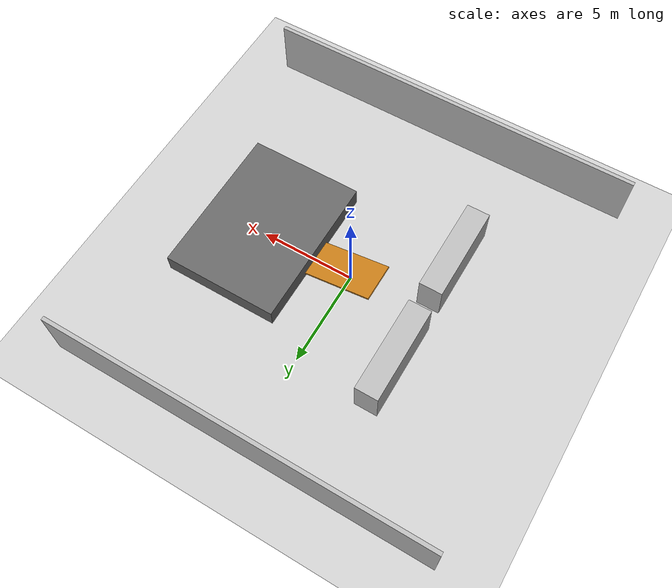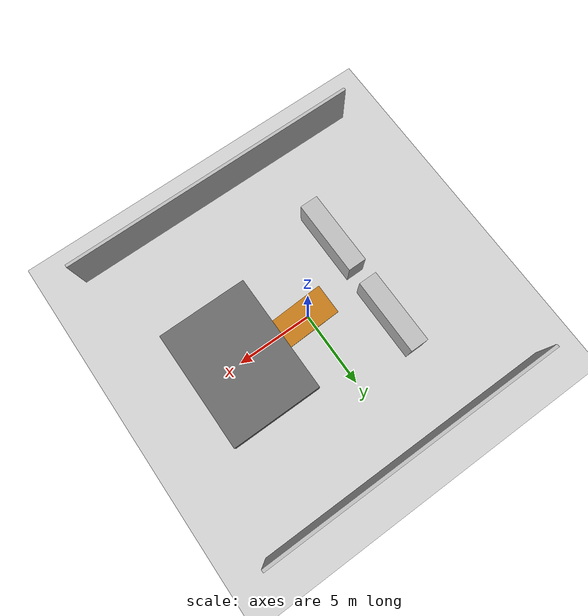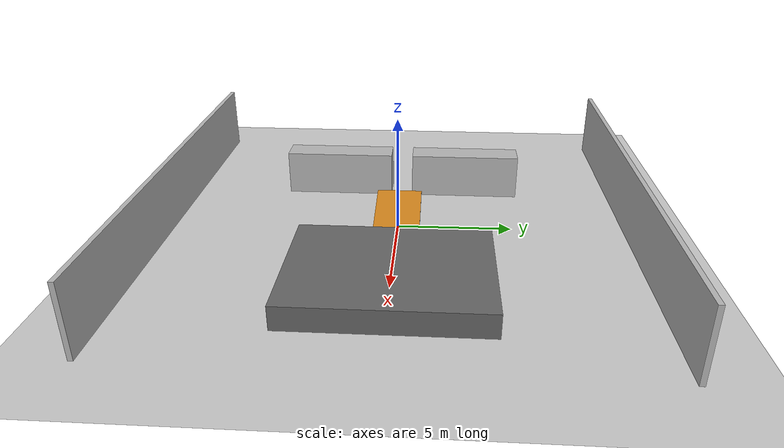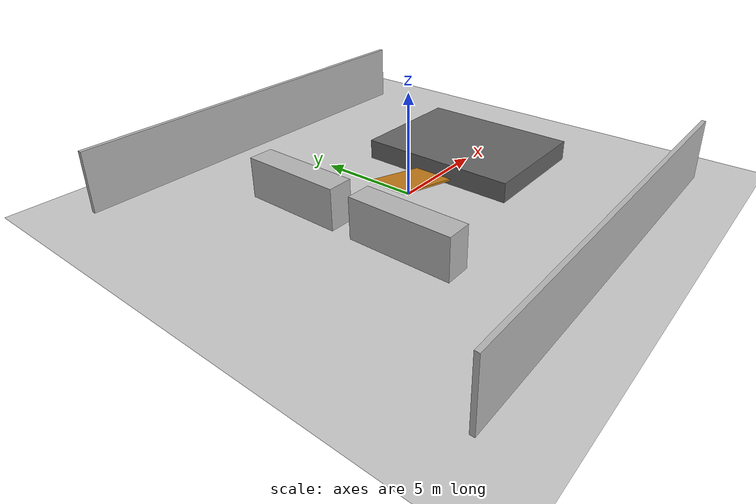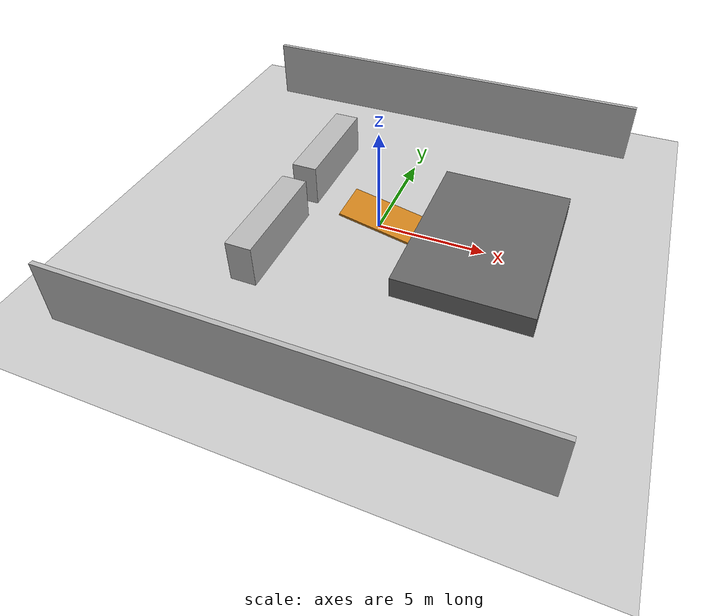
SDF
<?xml version="1.0" ?>
<sdf version="1.6">
  <world name="warehouse_ramps_world">
    <include><uri>model://sun</uri></include>
    <include><uri>model://ground_plane</uri></include>

    <model name="outer_walls">
      <static>true</static>
      <link name="link">
        <collision name="w1_c"><pose>0 10 1.5 0 0 0</pose><geometry><box><size>20 0.2 3</size></box></geometry></collision>
        <visual name="w1_v"><pose>0 10 1.5 0 0 0</pose><geometry><box><size>20 0.2 3</size></box></geometry></visual>
        <collision name="w2_c"><pose>0 -10 1.5 0 0 0</pose><geometry><box><size>20 0.2 3</size></box></geometry></collision>
        <visual name="w2_v"><pose>0 -10 1.5 0 0 0</pose><geometry><box><size>20 0.2 3</size></box></geometry></visual>
      </link>
    </model>

    <!-- Elevated Mezzanine -->
    <model name="mezzanine_level">
      <static>true</static>
      <pose>5 0 0.5 0 0 0</pose>
      <link name="link">
        <collision name="deck_col"><geometry><box><size>6 8 1.0</size></box></geometry></collision>
        <visual name="deck_vis">
          <geometry><box><size>6 8 1.0</size></box></geometry>
          <material><ambient>0.4 0.4 0.4 1</ambient></material>
        </visual>
      </link>
    </model>

    <!-- Ramp (~12 degree slope) -->
    <model name="warehouse_ramp">
      <static>true</static>
      <pose>0.8 0 0.5 0 0.21 0</pose>
      <link name="link">
        <collision name="ramp_col">
          <geometry><box><size>4.8 2.0 0.1</size></box></geometry>
          <surface><friction><ode><mu>1.0</mu><mu2>1.0</mu2></ode></friction></surface>
        </collision>
        <visual name="ramp_vis">
          <geometry><box><size>4.8 2.0 0.1</size></box></geometry>
          <material><ambient>0.8 0.5 0.1 1</ambient></material>
        </visual>
      </link>
    </model>

    <!-- Storage Racks -->
    <model name="storage_rack_1">
      <static>true</static>
      <pose>-4 3 1.0 0 0 0</pose>
      <link name="link">
        <collision name="col"><geometry><box><size>1.2 5.0 2.0</size></box></geometry></collision>
        <visual name="vis"><geometry><box><size>1.2 5.0 2.0</size></box></geometry></visual>
      </link>
    </model>

    <model name="storage_rack_2">
      <static>true</static>
      <pose>-4 -3 1.0 0 0 0</pose>
      <link name="link">
        <collision name="col"><geometry><box><size>1.2 5.0 2.0</size></box></geometry></collision>
        <visual name="vis"><geometry><box><size>1.2 5.0 2.0</size></box></geometry></visual>
      </link>
    </model>
  </world>
</sdf>
